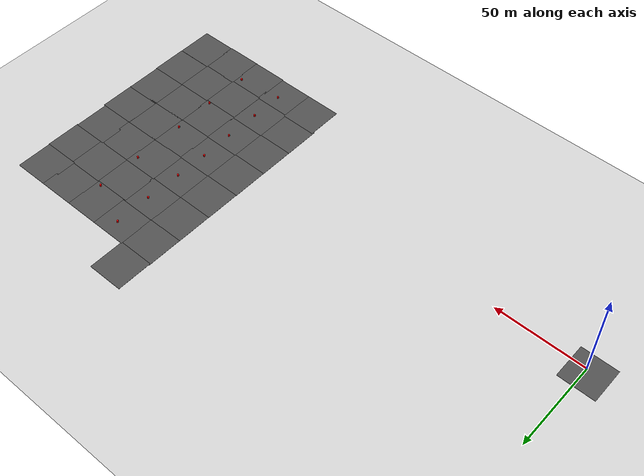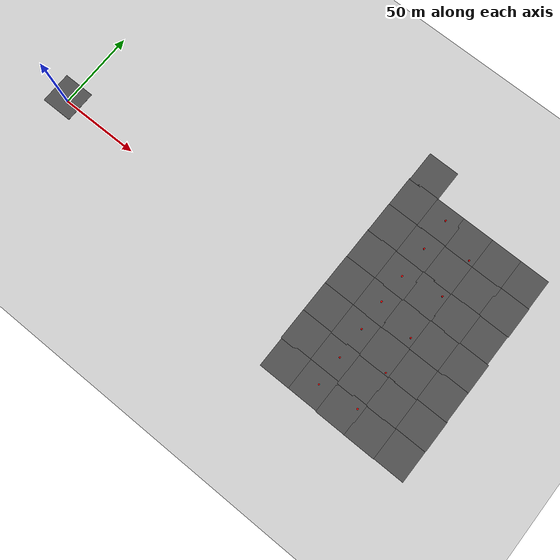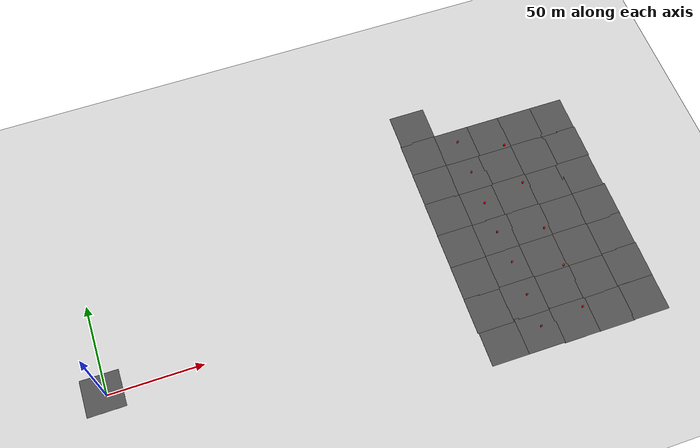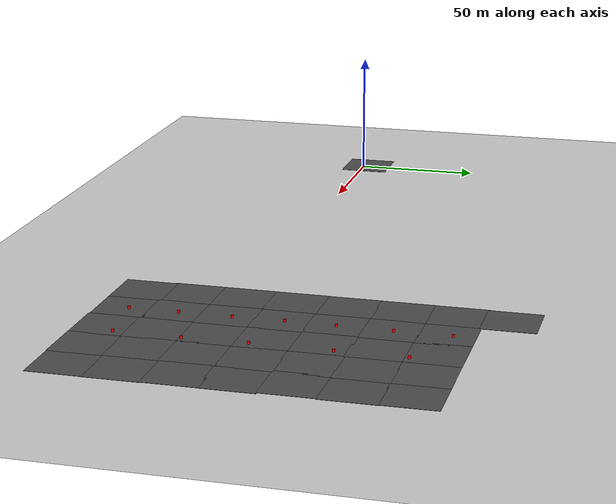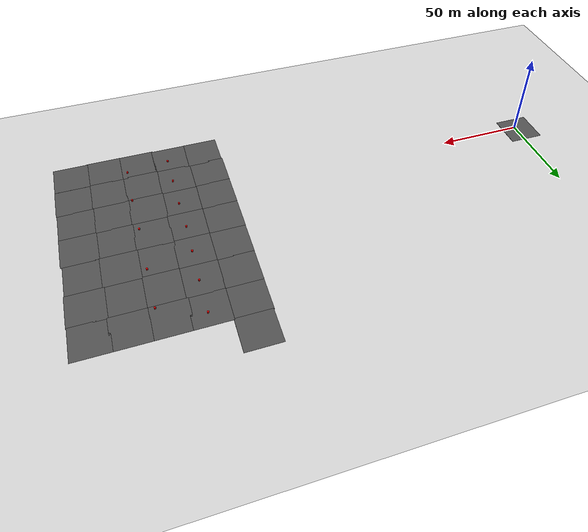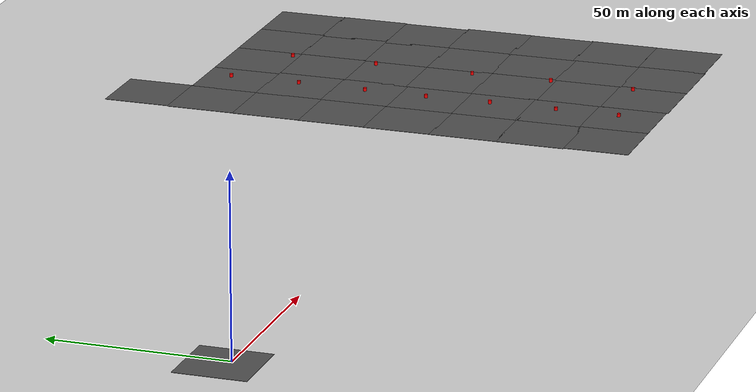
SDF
<sdf version="1.6">
 <world name="default">
  <model name="ground_plane">
   <static>1</static>
   <link name="link">
    <collision name="collision">
     <geometry><plane><normal>0 0 1</normal><size>100 100</size></plane></geometry>
     <surface>
      <contact><collide_bitmask>65535</collide_bitmask></contact>
      <friction><ode><mu>100</mu><mu2>50</mu2></ode></friction>
     </surface>
    </collision>
    <visual name="visual">
     <cast_shadows>0</cast_shadows>
     <geometry><plane><normal>0 0 1</normal><size>100 100</size></plane></geometry>
     <material>
      <script><uri>file://media/materials/scripts/gazebo.material</uri><name>Gazebo/Grey</name></script>
     </material>
    </visual>
   </link>
  </model>
  <model name="asphalt_plane">
   <static>1</static>
   <link name="link">
    <collision name="collision"><geometry><box><size>20 20 0.1</size></box></geometry></collision>
    <visual name="visual">
     <cast_shadows>0</cast_shadows>
     <geometry><box><size>20 20 0.1</size></box></geometry>
     <material>
      <script>
       <uri>model://asphalt_plane/materials/scripts</uri>
       <uri>model://asphalt_plane/materials/textures</uri>
       <name>vrc/asphalt</name>
      </script>
     </material>
    </visual>
   </link>
   <pose>-1.68563 1.69754 0 0 -0 0</pose>
  </model>
  <model name="asphalt_plane_71">
   <static>1</static>
   <link name="link">
    <collision name="collision"><geometry><box><size>20 20 0.1</size></box></geometry></collision>
    <visual name="visual">
     <cast_shadows>0</cast_shadows>
     <geometry><box><size>20 20 0.1</size></box></geometry>
     <material>
      <script>
       <uri>model://asphalt_plane/materials/scripts</uri>
       <uri>model://asphalt_plane/materials/textures</uri>
       <name>vrc/asphalt</name>
      </script>
     </material>
    </visual>
   </link>
   <pose>196.033 59.0461 0 0 -0 0</pose>
  </model>
  <model name="asphalt_plane_72">
   <static>1</static>
   <link name="link">
    <collision name="collision"><geometry><box><size>20 20 0.1</size></box></geometry></collision>
    <visual name="visual">
     <cast_shadows>0</cast_shadows>
     <geometry><box><size>20 20 0.1</size></box></geometry>
     <material>
      <script>
       <uri>model://asphalt_plane/materials/scripts</uri>
       <uri>model://asphalt_plane/materials/textures</uri>
       <name>vrc/asphalt</name>
      </script>
     </material>
    </visual>
   </link>
   <pose>195.926 39.5453 0 0 -0 0</pose>
  </model>
  <model name="asphalt_plane_73">
   <static>1</static>
   <link name="link">
    <collision name="collision"><geometry><box><size>20 20 0.1</size></box></geometry></collision>
    <visual name="visual">
     <cast_shadows>0</cast_shadows>
     <geometry><box><size>20 20 0.1</size></box></geometry>
     <material>
      <script>
       <uri>model://asphalt_plane/materials/scripts</uri>
       <uri>model://asphalt_plane/materials/textures</uri>
       <name>vrc/asphalt</name>
      </script>
     </material>
    </visual>
   </link>
   <pose>195.795 19.5893 0 0 -0 0</pose>
  </model>
  <model name="asphalt_plane_74">
   <static>1</static>
   <link name="link">
    <collision name="collision"><geometry><box><size>20 20 0.1</size></box></geometry></collision>
    <visual name="visual">
     <cast_shadows>0</cast_shadows>
     <geometry><box><size>20 20 0.1</size></box></geometry>
     <material>
      <script>
       <uri>model://asphalt_plane/materials/scripts</uri>
       <uri>model://asphalt_plane/materials/textures</uri>
       <name>vrc/asphalt</name>
      </script>
     </material>
    </visual>
   </link>
   <pose>195.721 0.037241 0 0 -0 0</pose>
  </model>
  <model name="asphalt_plane_75">
   <static>1</static>
   <link name="link">
    <collision name="collision"><geometry><box><size>20 20 0.1</size></box></geometry></collision>
    <visual name="visual">
     <cast_shadows>0</cast_shadows>
     <geometry><box><size>20 20 0.1</size></box></geometry>
     <material>
      <script>
       <uri>model://asphalt_plane/materials/scripts</uri>
       <uri>model://asphalt_plane/materials/textures</uri>
       <name>vrc/asphalt</name>
      </script>
     </material>
    </visual>
   </link>
   <pose>195.68 -19.5532 0 0 -0 0</pose>
  </model>
  <model name="asphalt_plane_76">
   <static>1</static>
   <link name="link">
    <collision name="collision"><geometry><box><size>20 20 0.1</size></box></geometry></collision>
    <visual name="visual">
     <cast_shadows>0</cast_shadows>
     <geometry><box><size>20 20 0.1</size></box></geometry>
     <material>
      <script>
       <uri>model://asphalt_plane/materials/scripts</uri>
       <uri>model://asphalt_plane/materials/textures</uri>
       <name>vrc/asphalt</name>
      </script>
     </material>
    </visual>
   </link>
   <pose>196.187 -38.3062 0 0 -0 0</pose>
  </model>
  <model name="asphalt_plane_77">
   <static>1</static>
   <link name="link">
    <collision name="collision"><geometry><box><size>20 20 0.1</size></box></geometry></collision>
    <visual name="visual">
     <cast_shadows>0</cast_shadows>
     <geometry><box><size>20 20 0.1</size></box></geometry>
     <material>
      <script>
       <uri>model://asphalt_plane/materials/scripts</uri>
       <uri>model://asphalt_plane/materials/textures</uri>
       <name>vrc/asphalt</name>
      </script>
     </material>
    </visual>
   </link>
   <pose>196.13 78.9336 0 0 -0 0</pose>
  </model>
  <model name="asphalt_plane_97">
   <static>1</static>
   <link name="link">
    <collision name="collision"><geometry><box><size>20 20 0.1</size></box></geometry></collision>
    <visual name="visual">
     <cast_shadows>0</cast_shadows>
     <geometry><box><size>20 20 0.1</size></box></geometry>
     <material>
      <script>
       <uri>model://asphalt_plane/materials/scripts</uri>
       <uri>model://asphalt_plane/materials/textures</uri>
       <name>vrc/asphalt</name>
      </script>
     </material>
    </visual>
   </link>
   <pose>215.963 78.8154 0 0 -0 0</pose>
  </model>
  <model name="asphalt_plane_98">
   <static>1</static>
   <link name="link">
    <collision name="collision"><geometry><box><size>20 20 0.1</size></box></geometry></collision>
    <visual name="visual">
     <cast_shadows>0</cast_shadows>
     <geometry><box><size>20 20 0.1</size></box></geometry>
     <material>
      <script>
       <uri>model://asphalt_plane/materials/scripts</uri>
       <uri>model://asphalt_plane/materials/textures</uri>
       <name>vrc/asphalt</name>
      </script>
     </material>
    </visual>
   </link>
   <pose>215.811 59.1695 0 0 -0 0</pose>
  </model>
  <model name="asphalt_plane_99">
   <static>1</static>
   <link name="link">
    <collision name="collision"><geometry><box><size>20 20 0.1</size></box></geometry></collision>
    <visual name="visual">
     <cast_shadows>0</cast_shadows>
     <geometry><box><size>20 20 0.1</size></box></geometry>
     <material>
      <script>
       <uri>model://asphalt_plane/materials/scripts</uri>
       <uri>model://asphalt_plane/materials/textures</uri>
       <name>vrc/asphalt</name>
      </script>
     </material>
    </visual>
   </link>
   <pose>215.884 39.315 0 0 -0 0</pose>
  </model>
  <model name="asphalt_plane_100">
   <static>1</static>
   <link name="link">
    <collision name="collision"><geometry><box><size>20 20 0.1</size></box></geometry></collision>
    <visual name="visual">
     <cast_shadows>0</cast_shadows>
     <geometry><box><size>20 20 0.1</size></box></geometry>
     <material>
      <script>
       <uri>model://asphalt_plane/materials/scripts</uri>
       <uri>model://asphalt_plane/materials/textures</uri>
       <name>vrc/asphalt</name>
      </script>
     </material>
    </visual>
   </link>
   <pose>215.718 19.7888 0 0 -0 0</pose>
  </model>
  <model name="asphalt_plane_101">
   <static>1</static>
   <link name="link">
    <collision name="collision"><geometry><box><size>20 20 0.1</size></box></geometry></collision>
    <visual name="visual">
     <cast_shadows>0</cast_shadows>
     <geometry><box><size>20 20 0.1</size></box></geometry>
     <material>
      <script>
       <uri>model://asphalt_plane/materials/scripts</uri>
       <uri>model://asphalt_plane/materials/textures</uri>
       <name>vrc/asphalt</name>
      </script>
     </material>
    </visual>
   </link>
   <pose>215.592 0.032219 0 0 -0 0</pose>
  </model>
  <model name="asphalt_plane_102">
   <static>1</static>
   <link name="link">
    <collision name="collision"><geometry><box><size>20 20 0.1</size></box></geometry></collision>
    <visual name="visual">
     <cast_shadows>0</cast_shadows>
     <geometry><box><size>20 20 0.1</size></box></geometry>
     <material>
      <script>
       <uri>model://asphalt_plane/materials/scripts</uri>
       <uri>model://asphalt_plane/materials/textures</uri>
       <name>vrc/asphalt</name>
      </script>
     </material>
    </visual>
   </link>
   <pose>215.391 -19.1645 0 0 -0 0</pose>
  </model>
  <model name="asphalt_plane_103">
   <static>1</static>
   <link name="link">
    <collision name="collision"><geometry><box><size>20 20 0.1</size></box></geometry></collision>
    <visual name="visual">
     <cast_shadows>0</cast_shadows>
     <geometry><box><size>20 20 0.1</size></box></geometry>
     <material>
      <script>
       <uri>model://asphalt_plane/materials/scripts</uri>
       <uri>model://asphalt_plane/materials/textures</uri>
       <name>vrc/asphalt</name>
      </script>
     </material>
    </visual>
   </link>
   <pose>216.035 -38.3002 0 0 -0 0</pose>
  </model>
  <model name="asphalt_plane_104">
   <static>1</static>
   <link name="link">
    <collision name="collision"><geometry><box><size>20 20 0.1</size></box></geometry></collision>
    <visual name="visual">
     <cast_shadows>0</cast_shadows>
     <geometry><box><size>20 20 0.1</size></box></geometry>
     <material>
      <script>
       <uri>model://asphalt_plane/materials/scripts</uri>
       <uri>model://asphalt_plane/materials/textures</uri>
       <name>vrc/asphalt</name>
      </script>
     </material>
    </visual>
   </link>
   <pose>234.771 78.8234 0 0 -0 0</pose>
  </model>
  <model name="asphalt_plane_105">
   <static>1</static>
   <link name="link">
    <collision name="collision"><geometry><box><size>20 20 0.1</size></box></geometry></collision>
    <visual name="visual">
     <cast_shadows>0</cast_shadows>
     <geometry><box><size>20 20 0.1</size></box></geometry>
     <material>
      <script>
       <uri>model://asphalt_plane/materials/scripts</uri>
       <uri>model://asphalt_plane/materials/textures</uri>
       <name>vrc/asphalt</name>
      </script>
     </material>
    </visual>
   </link>
   <pose>234.889 58.8538 0 0 -0 0</pose>
  </model>
  <model name="asphalt_plane_106">
   <static>1</static>
   <link name="link">
    <collision name="collision"><geometry><box><size>20 20 0.1</size></box></geometry></collision>
    <visual name="visual">
     <cast_shadows>0</cast_shadows>
     <geometry><box><size>20 20 0.1</size></box></geometry>
     <material>
      <script>
       <uri>model://asphalt_plane/materials/scripts</uri>
       <uri>model://asphalt_plane/materials/textures</uri>
       <name>vrc/asphalt</name>
      </script>
     </material>
    </visual>
   </link>
   <pose>235.063 39.6151 0 0 -0 0</pose>
  </model>
  <model name="asphalt_plane_107">
   <static>1</static>
   <link name="link">
    <collision name="collision"><geometry><box><size>20 20 0.1</size></box></geometry></collision>
    <visual name="visual">
     <cast_shadows>0</cast_shadows>
     <geometry><box><size>20 20 0.1</size></box></geometry>
     <material>
      <script>
       <uri>model://asphalt_plane/materials/scripts</uri>
       <uri>model://asphalt_plane/materials/textures</uri>
       <name>vrc/asphalt</name>
      </script>
     </material>
    </visual>
   </link>
   <pose>235.154 19.9282 0 0 -0 0</pose>
  </model>
  <model name="asphalt_plane_108">
   <static>1</static>
   <link name="link">
    <collision name="collision"><geometry><box><size>20 20 0.1</size></box></geometry></collision>
    <visual name="visual">
     <cast_shadows>0</cast_shadows>
     <geometry><box><size>20 20 0.1</size></box></geometry>
     <material>
      <script>
       <uri>model://asphalt_plane/materials/scripts</uri>
       <uri>model://asphalt_plane/materials/textures</uri>
       <name>vrc/asphalt</name>
      </script>
     </material>
    </visual>
   </link>
   <pose>235.037 0.192656 0 0 -0 0</pose>
  </model>
  <model name="asphalt_plane_109">
   <static>1</static>
   <link name="link">
    <collision name="collision"><geometry><box><size>20 20 0.1</size></box></geometry></collision>
    <visual name="visual">
     <cast_shadows>0</cast_shadows>
     <geometry><box><size>20 20 0.1</size></box></geometry>
     <material>
      <script>
       <uri>model://asphalt_plane/materials/scripts</uri>
       <uri>model://asphalt_plane/materials/textures</uri>
       <name>vrc/asphalt</name>
      </script>
     </material>
    </visual>
   </link>
   <pose>235.185 -19.6901 0 0 -0 0</pose>
  </model>
  <model name="asphalt_plane_110">
   <static>1</static>
   <link name="link">
    <collision name="collision"><geometry><box><size>20 20 0.1</size></box></geometry></collision>
    <visual name="visual">
     <cast_shadows>0</cast_shadows>
     <geometry><box><size>20 20 0.1</size></box></geometry>
     <material>
      <script>
       <uri>model://asphalt_plane/materials/scripts</uri>
       <uri>model://asphalt_plane/materials/textures</uri>
       <name>vrc/asphalt</name>
      </script>
     </material>
    </visual>
   </link>
   <pose>235.33 -38.7188 0 0 -0 0</pose>
  </model>
  <model name="asphalt_plane_111">
   <static>1</static>
   <link name="link">
    <collision name="collision"><geometry><box><size>20 20 0.1</size></box></geometry></collision>
    <visual name="visual">
     <cast_shadows>0</cast_shadows>
     <geometry><box><size>20 20 0.1</size></box></geometry>
     <material>
      <script>
       <uri>model://asphalt_plane/materials/scripts</uri>
       <uri>model://asphalt_plane/materials/textures</uri>
       <name>vrc/asphalt</name>
      </script>
     </material>
    </visual>
   </link>
   <pose>254.52 78.8409 0 0 -0 0</pose>
  </model>
  <model name="asphalt_plane_112">
   <static>1</static>
   <link name="link">
    <collision name="collision"><geometry><box><size>20 20 0.1</size></box></geometry></collision>
    <visual name="visual">
     <cast_shadows>0</cast_shadows>
     <geometry><box><size>20 20 0.1</size></box></geometry>
     <material>
      <script>
       <uri>model://asphalt_plane/materials/scripts</uri>
       <uri>model://asphalt_plane/materials/textures</uri>
       <name>vrc/asphalt</name>
      </script>
     </material>
    </visual>
   </link>
   <pose>254.735 59.2367 0 0 -0 0</pose>
  </model>
  <model name="asphalt_plane_113">
   <static>1</static>
   <link name="link">
    <collision name="collision"><geometry><box><size>20 20 0.1</size></box></geometry></collision>
    <visual name="visual">
     <cast_shadows>0</cast_shadows>
     <geometry><box><size>20 20 0.1</size></box></geometry>
     <material>
      <script>
       <uri>model://asphalt_plane/materials/scripts</uri>
       <uri>model://asphalt_plane/materials/textures</uri>
       <name>vrc/asphalt</name>
      </script>
     </material>
    </visual>
   </link>
   <pose>254.61 39.5388 0 0 -0 0</pose>
  </model>
  <model name="asphalt_plane_114">
   <static>1</static>
   <link name="link">
    <collision name="collision"><geometry><box><size>20 20 0.1</size></box></geometry></collision>
    <visual name="visual">
     <cast_shadows>0</cast_shadows>
     <geometry><box><size>20 20 0.1</size></box></geometry>
     <material>
      <script>
       <uri>model://asphalt_plane/materials/scripts</uri>
       <uri>model://asphalt_plane/materials/textures</uri>
       <name>vrc/asphalt</name>
      </script>
     </material>
    </visual>
   </link>
   <pose>254.564 20.0273 0 0 -0 0</pose>
  </model>
  <model name="asphalt_plane_115">
   <static>1</static>
   <link name="link">
    <collision name="collision"><geometry><box><size>20 20 0.1</size></box></geometry></collision>
    <visual name="visual">
     <cast_shadows>0</cast_shadows>
     <geometry><box><size>20 20 0.1</size></box></geometry>
     <material>
      <script>
       <uri>model://asphalt_plane/materials/scripts</uri>
       <uri>model://asphalt_plane/materials/textures</uri>
       <name>vrc/asphalt</name>
      </script>
     </material>
    </visual>
   </link>
   <pose>254.423 0.477799 0 0 -0 0</pose>
  </model>
  <model name="asphalt_plane_116">
   <static>1</static>
   <link name="link">
    <collision name="collision"><geometry><box><size>20 20 0.1</size></box></geometry></collision>
    <visual name="visual">
     <cast_shadows>0</cast_shadows>
     <geometry><box><size>20 20 0.1</size></box></geometry>
     <material>
      <script>
       <uri>model://asphalt_plane/materials/scripts</uri>
       <uri>model://asphalt_plane/materials/textures</uri>
       <name>vrc/asphalt</name>
      </script>
     </material>
    </visual>
   </link>
   <pose>254.621 -19.1271 0 0 -0 0</pose>
  </model>
  <model name="asphalt_plane_117">
   <static>1</static>
   <link name="link">
    <collision name="collision"><geometry><box><size>20 20 0.1</size></box></geometry></collision>
    <visual name="visual">
     <cast_shadows>0</cast_shadows>
     <geometry><box><size>20 20 0.1</size></box></geometry>
     <material>
      <script>
       <uri>model://asphalt_plane/materials/scripts</uri>
       <uri>model://asphalt_plane/materials/textures</uri>
       <name>vrc/asphalt</name>
      </script>
     </material>
    </visual>
   </link>
   <pose>254.804 -38.7956 0 0 -0 0</pose>
  </model>
  <model name="asphalt_plane_118">
   <static>1</static>
   <link name="link">
    <collision name="collision"><geometry><box><size>20 20 0.1</size></box></geometry></collision>
    <visual name="visual">
     <cast_shadows>0</cast_shadows>
     <geometry><box><size>20 20 0.1</size></box></geometry>
     <material>
      <script>
       <uri>model://asphalt_plane/materials/scripts</uri>
       <uri>model://asphalt_plane/materials/textures</uri>
       <name>vrc/asphalt</name>
      </script>
     </material>
    </visual>
   </link>
   <pose>273.396 78.8317 0 0 -0 0</pose>
  </model>
  <model name="asphalt_plane_119">
   <static>1</static>
   <link name="link">
    <collision name="collision"><geometry><box><size>20 20 0.1</size></box></geometry></collision>
    <visual name="visual">
     <cast_shadows>0</cast_shadows>
     <geometry><box><size>20 20 0.1</size></box></geometry>
     <material>
      <script>
       <uri>model://asphalt_plane/materials/scripts</uri>
       <uri>model://asphalt_plane/materials/textures</uri>
       <name>vrc/asphalt</name>
      </script>
     </material>
    </visual>
   </link>
   <pose>273.695 59.3248 0 0 -0 0</pose>
  </model>
  <model name="asphalt_plane_120">
   <static>1</static>
   <link name="link">
    <collision name="collision"><geometry><box><size>20 20 0.1</size></box></geometry></collision>
    <visual name="visual">
     <cast_shadows>0</cast_shadows>
     <geometry><box><size>20 20 0.1</size></box></geometry>
     <material>
      <script>
       <uri>model://asphalt_plane/materials/scripts</uri>
       <uri>model://asphalt_plane/materials/textures</uri>
       <name>vrc/asphalt</name>
      </script>
     </material>
    </visual>
   </link>
   <pose>273.304 39.6841 0 0 -0 0</pose>
  </model>
  <model name="asphalt_plane_121">
   <static>1</static>
   <link name="link">
    <collision name="collision"><geometry><box><size>20 20 0.1</size></box></geometry></collision>
    <visual name="visual">
     <cast_shadows>0</cast_shadows>
     <geometry><box><size>20 20 0.1</size></box></geometry>
     <material>
      <script>
       <uri>model://asphalt_plane/materials/scripts</uri>
       <uri>model://asphalt_plane/materials/textures</uri>
       <name>vrc/asphalt</name>
      </script>
     </material>
    </visual>
   </link>
   <pose>274.172 20.0591 0 0 -0 0</pose>
  </model>
  <model name="asphalt_plane_122">
   <static>1</static>
   <link name="link">
    <collision name="collision"><geometry><box><size>20 20 0.1</size></box></geometry></collision>
    <visual name="visual">
     <cast_shadows>0</cast_shadows>
     <geometry><box><size>20 20 0.1</size></box></geometry>
     <material>
      <script>
       <uri>model://asphalt_plane/materials/scripts</uri>
       <uri>model://asphalt_plane/materials/textures</uri>
       <name>vrc/asphalt</name>
      </script>
     </material>
    </visual>
   </link>
   <pose>274.1 1.0028 0 0 -0 0</pose>
  </model>
  <model name="asphalt_plane_123">
   <static>1</static>
   <link name="link">
    <collision name="collision"><geometry><box><size>20 20 0.1</size></box></geometry></collision>
    <visual name="visual">
     <cast_shadows>0</cast_shadows>
     <geometry><box><size>20 20 0.1</size></box></geometry>
     <material>
      <script>
       <uri>model://asphalt_plane/materials/scripts</uri>
       <uri>model://asphalt_plane/materials/textures</uri>
       <name>vrc/asphalt</name>
      </script>
     </material>
    </visual>
   </link>
   <pose>274.434 -18.5635 0 0 -0 0</pose>
  </model>
  <model name="asphalt_plane_124">
   <static>1</static>
   <link name="link">
    <collision name="collision"><geometry><box><size>20 20 0.1</size></box></geometry></collision>
    <visual name="visual">
     <cast_shadows>0</cast_shadows>
     <geometry><box><size>20 20 0.1</size></box></geometry>
     <material>
      <script>
       <uri>model://asphalt_plane/materials/scripts</uri>
       <uri>model://asphalt_plane/materials/textures</uri>
       <name>vrc/asphalt</name>
      </script>
     </material>
    </visual>
   </link>
   <pose>274.33 -38.5794 0 0 -0 0</pose>
  </model>
  <model name="asphalt_plane_129">
   <static>1</static>
   <link name="link">
    <collision name="collision"><geometry><box><size>20 20 0.1</size></box></geometry></collision>
    <visual name="visual">
     <cast_shadows>0</cast_shadows>
     <geometry><box><size>20 20 0.1</size></box></geometry>
     <material>
      <script>
       <uri>model://asphalt_plane/materials/scripts</uri>
       <uri>model://asphalt_plane/materials/textures</uri>
       <name>vrc/asphalt</name>
      </script>
     </material>
    </visual>
   </link>
   <pose>196.465 98.0841 0 0 -0 0</pose>
  </model>
  <model name="station_7">
   <link name="link">
    <inertial>
     <mass>1</mass>
     <inertia><ixx>0.145833</ixx><ixy>0</ixy><ixz>0</ixz><iyy>0.145833</iyy><iyz>0</iyz><izz>0.125</izz></inertia>
    </inertial>
    <visual name="visual">
     <geometry><cylinder><radius>0.5</radius><length>1</length></cylinder></geometry>
     <material>
      <script><name>Gazebo/Grey</name><uri>file://media/materials/scripts/gazebo.material</uri></script>
      <shader type="vertex"><normal_map>__default__</normal_map></shader>
      <ambient>1 0 0 0</ambient>
      <diffuse>0 0 0 1</diffuse>
      <specular>0.91 0.01 0.01 1</specular>
      <emissive>0 0 0 1</emissive>
     </material>
    </visual>
    <collision name="collision">
     <geometry><cylinder><radius>0.5</radius><length>1</length></cylinder></geometry>
     <surface>
      <friction>
       <ode><mu>1</mu><mu2>1</mu2><fdir1>0 0 0</fdir1><slip1>0</slip1><slip2>0</slip2></ode>
       <torsional>
        <coefficient>1</coefficient>
        <patch_radius>0</patch_radius>
        <surface_radius>0</surface_radius>
        <use_patch_radius>1</use_patch_radius>
        <ode><slip>0</slip></ode>
       </torsional>
      </friction>
      <bounce><restitution_coefficient>0</restitution_coefficient><threshold>1e+06</threshold></bounce>
      <contact>
       <collide_without_contact>0</collide_without_contact>
       <collide_without_contact_bitmask>1</collide_without_contact_bitmask>
       <collide_bitmask>1</collide_bitmask>
       <ode>
        <soft_cfm>0</soft_cfm>
        <soft_erp>0.2</soft_erp>
        <kp>1e+13</kp>
        <kd>1</kd>
        <max_vel>0.01</max_vel>
        <min_depth>0</min_depth>
       </ode>
       <bullet>
        <split_impulse>1</split_impulse>
        <split_impulse_penetration_threshold>-0.01</split_impulse_penetration_threshold>
        <soft_cfm>0</soft_cfm>
        <soft_erp>0.2</soft_erp>
        <kp>1e+13</kp>
        <kd>1</kd>
       </bullet>
      </contact>
     </surface>
    </collision>
   </link>
   <static>1</static>
   <pose>241.37 70.5062 0.619557 0 -0 0</pose>
  </model>
  <model name="station_8">
   <link name="link">
    <inertial>
     <mass>1</mass>
     <inertia><ixx>0.145833</ixx><ixy>0</ixy><ixz>0</ixz><iyy>0.145833</iyy><iyz>0</iyz><izz>0.125</izz></inertia>
    </inertial>
    <visual name="visual">
     <geometry><cylinder><radius>0.5</radius><length>1</length></cylinder></geometry>
     <material>
      <script><name>Gazebo/Grey</name><uri>file://media/materials/scripts/gazebo.material</uri></script>
      <shader type="vertex"><normal_map>__default__</normal_map></shader>
      <ambient>1 0 0 0</ambient>
      <diffuse>0 0 0 1</diffuse>
      <specular>0.91 0.01 0.01 1</specular>
      <emissive>0 0 0 1</emissive>
     </material>
    </visual>
    <collision name="collision">
     <geometry><cylinder><radius>0.5</radius><length>1</length></cylinder></geometry>
     <surface>
      <friction>
       <ode><mu>1</mu><mu2>1</mu2><fdir1>0 0 0</fdir1><slip1>0</slip1><slip2>0</slip2></ode>
       <torsional>
        <coefficient>1</coefficient>
        <patch_radius>0</patch_radius>
        <surface_radius>0</surface_radius>
        <use_patch_radius>1</use_patch_radius>
        <ode><slip>0</slip></ode>
       </torsional>
      </friction>
      <bounce><restitution_coefficient>0</restitution_coefficient><threshold>1e+06</threshold></bounce>
      <contact>
       <collide_without_contact>0</collide_without_contact>
       <collide_without_contact_bitmask>1</collide_without_contact_bitmask>
       <collide_bitmask>1</collide_bitmask>
       <ode>
        <soft_cfm>0</soft_cfm>
        <soft_erp>0.2</soft_erp>
        <kp>1e+13</kp>
        <kd>1</kd>
        <max_vel>0.01</max_vel>
        <min_depth>0</min_depth>
       </ode>
       <bullet>
        <split_impulse>1</split_impulse>
        <split_impulse_penetration_threshold>-0.01</split_impulse_penetration_threshold>
        <soft_cfm>0</soft_cfm>
        <soft_erp>0.2</soft_erp>
        <kp>1e+13</kp>
        <kd>1</kd>
       </bullet>
      </contact>
     </surface>
    </collision>
   </link>
   <static>1</static>
   <pose>241.647 44.7638 0.619557 0 -0 0</pose>
  </model>
  <model name="station_9">
   <link name="link">
    <inertial>
     <mass>1</mass>
     <inertia><ixx>0.145833</ixx><ixy>0</ixy><ixz>0</ixz><iyy>0.145833</iyy><iyz>0</iyz><izz>0.125</izz></inertia>
    </inertial>
    <visual name="visual">
     <geometry><cylinder><radius>0.5</radius><length>1</length></cylinder></geometry>
     <material>
      <script><name>Gazebo/Grey</name><uri>file://media/materials/scripts/gazebo.material</uri></script>
      <shader type="vertex"><normal_map>__default__</normal_map></shader>
      <ambient>1 0 0 0</ambient>
      <diffuse>0 0 0 1</diffuse>
      <specular>0.91 0.01 0.01 1</specular>
      <emissive>0 0 0 1</emissive>
     </material>
    </visual>
    <collision name="collision">
     <geometry><cylinder><radius>0.5</radius><length>1</length></cylinder></geometry>
     <surface>
      <friction>
       <ode><mu>1</mu><mu2>1</mu2><fdir1>0 0 0</fdir1><slip1>0</slip1><slip2>0</slip2></ode>
       <torsional>
        <coefficient>1</coefficient>
        <patch_radius>0</patch_radius>
        <surface_radius>0</surface_radius>
        <use_patch_radius>1</use_patch_radius>
        <ode><slip>0</slip></ode>
       </torsional>
      </friction>
      <bounce><restitution_coefficient>0</restitution_coefficient><threshold>1e+06</threshold></bounce>
      <contact>
       <collide_without_contact>0</collide_without_contact>
       <collide_without_contact_bitmask>1</collide_without_contact_bitmask>
       <collide_bitmask>1</collide_bitmask>
       <ode>
        <soft_cfm>0</soft_cfm>
        <soft_erp>0.2</soft_erp>
        <kp>1e+13</kp>
        <kd>1</kd>
        <max_vel>0.01</max_vel>
        <min_depth>0</min_depth>
       </ode>
       <bullet>
        <split_impulse>1</split_impulse>
        <split_impulse_penetration_threshold>-0.01</split_impulse_penetration_threshold>
        <soft_cfm>0</soft_cfm>
        <soft_erp>0.2</soft_erp>
        <kp>1e+13</kp>
        <kd>1</kd>
       </bullet>
      </contact>
     </surface>
    </collision>
   </link>
   <static>1</static>
   <pose>241.685 15.1841 0.619557 0 -0 0</pose>
  </model>
  <model name="station_10">
   <link name="link">
    <inertial>
     <mass>1</mass>
     <inertia><ixx>0.145833</ixx><ixy>0</ixy><ixz>0</ixz><iyy>0.145833</iyy><iyz>0</iyz><izz>0.125</izz></inertia>
    </inertial>
    <visual name="visual">
     <geometry><cylinder><radius>0.5</radius><length>1</length></cylinder></geometry>
     <material>
      <script><name>Gazebo/Grey</name><uri>file://media/materials/scripts/gazebo.material</uri></script>
      <shader type="vertex"><normal_map>__default__</normal_map></shader>
      <ambient>1 0 0 0</ambient>
      <diffuse>0 0 0 1</diffuse>
      <specular>0.91 0.01 0.01 1</specular>
      <emissive>0 0 0 1</emissive>
     </material>
    </visual>
    <collision name="collision">
     <geometry><cylinder><radius>0.5</radius><length>1</length></cylinder></geometry>
     <surface>
      <friction>
       <ode><mu>1</mu><mu2>1</mu2><fdir1>0 0 0</fdir1><slip1>0</slip1><slip2>0</slip2></ode>
       <torsional>
        <coefficient>1</coefficient>
        <patch_radius>0</patch_radius>
        <surface_radius>0</surface_radius>
        <use_patch_radius>1</use_patch_radius>
        <ode><slip>0</slip></ode>
       </torsional>
      </friction>
      <bounce><restitution_coefficient>0</restitution_coefficient><threshold>1e+06</threshold></bounce>
      <contact>
       <collide_without_contact>0</collide_without_contact>
       <collide_without_contact_bitmask>1</collide_without_contact_bitmask>
       <collide_bitmask>1</collide_bitmask>
       <ode>
        <soft_cfm>0</soft_cfm>
        <soft_erp>0.2</soft_erp>
        <kp>1e+13</kp>
        <kd>1</kd>
        <max_vel>0.01</max_vel>
        <min_depth>0</min_depth>
       </ode>
       <bullet>
        <split_impulse>1</split_impulse>
        <split_impulse_penetration_threshold>-0.01</split_impulse_penetration_threshold>
        <soft_cfm>0</soft_cfm>
        <soft_erp>0.2</soft_erp>
        <kp>1e+13</kp>
        <kd>1</kd>
       </bullet>
      </contact>
     </surface>
    </collision>
   </link>
   <static>1</static>
   <pose>242.475 -8.50903 0.619557 0 -0 0</pose>
  </model>
  <model name="station_11">
   <link name="link">
    <inertial>
     <mass>1</mass>
     <inertia><ixx>0.145833</ixx><ixy>0</ixy><ixz>0</ixz><iyy>0.145833</iyy><iyz>0</iyz><izz>0.125</izz></inertia>
    </inertial>
    <visual name="visual">
     <geometry><cylinder><radius>0.5</radius><length>1</length></cylinder></geometry>
     <material>
      <script><name>Gazebo/Grey</name><uri>file://media/materials/scripts/gazebo.material</uri></script>
      <shader type="vertex"><normal_map>__default__</normal_map></shader>
      <ambient>1 0 0 0</ambient>
      <diffuse>0 0 0 1</diffuse>
      <specular>0.91 0.01 0.01 1</specular>
      <emissive>0 0 0 1</emissive>
     </material>
    </visual>
    <collision name="collision">
     <geometry><cylinder><radius>0.5</radius><length>1</length></cylinder></geometry>
     <surface>
      <friction>
       <ode><mu>1</mu><mu2>1</mu2><fdir1>0 0 0</fdir1><slip1>0</slip1><slip2>0</slip2></ode>
       <torsional>
        <coefficient>1</coefficient>
        <patch_radius>0</patch_radius>
        <surface_radius>0</surface_radius>
        <use_patch_radius>1</use_patch_radius>
        <ode><slip>0</slip></ode>
       </torsional>
      </friction>
      <bounce><restitution_coefficient>0</restitution_coefficient><threshold>1e+06</threshold></bounce>
      <contact>
       <collide_without_contact>0</collide_without_contact>
       <collide_without_contact_bitmask>1</collide_without_contact_bitmask>
       <collide_bitmask>1</collide_bitmask>
       <ode>
        <soft_cfm>0</soft_cfm>
        <soft_erp>0.2</soft_erp>
        <kp>1e+13</kp>
        <kd>1</kd>
        <max_vel>0.01</max_vel>
        <min_depth>0</min_depth>
       </ode>
       <bullet>
        <split_impulse>1</split_impulse>
        <split_impulse_penetration_threshold>-0.01</split_impulse_penetration_threshold>
        <soft_cfm>0</soft_cfm>
        <soft_erp>0.2</soft_erp>
        <kp>1e+13</kp>
        <kd>1</kd>
       </bullet>
      </contact>
     </surface>
    </collision>
   </link>
   <static>1</static>
   <pose>242.213 -33.4155 0.619557 0 -0 0</pose>
  </model>
  <model name="station_12">
   <link name="link">
    <inertial>
     <mass>1</mass>
     <inertia><ixx>0.145833</ixx><ixy>0</ixy><ixz>0</ixz><iyy>0.145833</iyy><iyz>0</iyz><izz>0.125</izz></inertia>
    </inertial>
    <visual name="visual">
     <geometry><cylinder><radius>0.5</radius><length>1</length></cylinder></geometry>
     <material>
      <script><name>Gazebo/Grey</name><uri>file://media/materials/scripts/gazebo.material</uri></script>
      <shader type="vertex"><normal_map>__default__</normal_map></shader>
      <ambient>1 0 0 0</ambient>
      <diffuse>0 0 0 1</diffuse>
      <specular>0.91 0.01 0.01 1</specular>
      <emissive>0 0 0 1</emissive>
     </material>
    </visual>
    <collision name="collision">
     <geometry><cylinder><radius>0.5</radius><length>1</length></cylinder></geometry>
     <surface>
      <friction>
       <ode><mu>1</mu><mu2>1</mu2><fdir1>0 0 0</fdir1><slip1>0</slip1><slip2>0</slip2></ode>
       <torsional>
        <coefficient>1</coefficient>
        <patch_radius>0</patch_radius>
        <surface_radius>0</surface_radius>
        <use_patch_radius>1</use_patch_radius>
        <ode><slip>0</slip></ode>
       </torsional>
      </friction>
      <bounce><restitution_coefficient>0</restitution_coefficient><threshold>1e+06</threshold></bounce>
      <contact>
       <collide_without_contact>0</collide_without_contact>
       <collide_without_contact_bitmask>1</collide_without_contact_bitmask>
       <collide_bitmask>1</collide_bitmask>
       <ode>
        <soft_cfm>0</soft_cfm>
        <soft_erp>0.2</soft_erp>
        <kp>1e+13</kp>
        <kd>1</kd>
        <max_vel>0.01</max_vel>
        <min_depth>0</min_depth>
       </ode>
       <bullet>
        <split_impulse>1</split_impulse>
        <split_impulse_penetration_threshold>-0.01</split_impulse_penetration_threshold>
        <soft_cfm>0</soft_cfm>
        <soft_erp>0.2</soft_erp>
        <kp>1e+13</kp>
        <kd>1</kd>
       </bullet>
      </contact>
     </surface>
    </collision>
   </link>
   <static>1</static>
   <pose>217.791 -36.2528 0.619557 0 -0 0</pose>
  </model>
  <model name="station_13">
   <link name="link">
    <inertial>
     <mass>1</mass>
     <inertia><ixx>0.145833</ixx><ixy>0</ixy><ixz>0</ixz><iyy>0.145833</iyy><iyz>0</iyz><izz>0.125</izz></inertia>
    </inertial>
    <visual name="visual">
     <geometry><cylinder><radius>0.5</radius><length>1</length></cylinder></geometry>
     <material>
      <script><name>Gazebo/Grey</name><uri>file://media/materials/scripts/gazebo.material</uri></script>
      <shader type="vertex"><normal_map>__default__</normal_map></shader>
      <ambient>1 0 0 0</ambient>
      <diffuse>0 0 0 1</diffuse>
      <specular>0.91 0.01 0.01 1</specular>
      <emissive>0 0 0 1</emissive>
     </material>
    </visual>
    <collision name="collision">
     <geometry><cylinder><radius>0.5</radius><length>1</length></cylinder></geometry>
     <surface>
      <friction>
       <ode><mu>1</mu><mu2>1</mu2><fdir1>0 0 0</fdir1><slip1>0</slip1><slip2>0</slip2></ode>
       <torsional>
        <coefficient>1</coefficient>
        <patch_radius>0</patch_radius>
        <surface_radius>0</surface_radius>
        <use_patch_radius>1</use_patch_radius>
        <ode><slip>0</slip></ode>
       </torsional>
      </friction>
      <bounce><restitution_coefficient>0</restitution_coefficient><threshold>1e+06</threshold></bounce>
      <contact>
       <collide_without_contact>0</collide_without_contact>
       <collide_without_contact_bitmask>1</collide_without_contact_bitmask>
       <collide_bitmask>1</collide_bitmask>
       <ode>
        <soft_cfm>0</soft_cfm>
        <soft_erp>0.2</soft_erp>
        <kp>1e+13</kp>
        <kd>1</kd>
        <max_vel>0.01</max_vel>
        <min_depth>0</min_depth>
       </ode>
       <bullet>
        <split_impulse>1</split_impulse>
        <split_impulse_penetration_threshold>-0.01</split_impulse_penetration_threshold>
        <soft_cfm>0</soft_cfm>
        <soft_erp>0.2</soft_erp>
        <kp>1e+13</kp>
        <kd>1</kd>
       </bullet>
      </contact>
     </surface>
    </collision>
   </link>
   <static>1</static>
   <pose>217.725 -17.6626 0.619557 0 -0 0</pose>
  </model>
  <model name="station_14">
   <link name="link">
    <inertial>
     <mass>1</mass>
     <inertia><ixx>0.145833</ixx><ixy>0</ixy><ixz>0</ixz><iyy>0.145833</iyy><iyz>0</iyz><izz>0.125</izz></inertia>
    </inertial>
    <visual name="visual">
     <geometry><cylinder><radius>0.5</radius><length>1</length></cylinder></geometry>
     <material>
      <script><name>Gazebo/Grey</name><uri>file://media/materials/scripts/gazebo.material</uri></script>
      <shader type="vertex"><normal_map>__default__</normal_map></shader>
      <ambient>1 0 0 0</ambient>
      <diffuse>0 0 0 1</diffuse>
      <specular>0.91 0.01 0.01 1</specular>
      <emissive>0 0 0 1</emissive>
     </material>
    </visual>
    <collision name="collision">
     <geometry><cylinder><radius>0.5</radius><length>1</length></cylinder></geometry>
     <surface>
      <friction>
       <ode><mu>1</mu><mu2>1</mu2><fdir1>0 0 0</fdir1><slip1>0</slip1><slip2>0</slip2></ode>
       <torsional>
        <coefficient>1</coefficient>
        <patch_radius>0</patch_radius>
        <surface_radius>0</surface_radius>
        <use_patch_radius>1</use_patch_radius>
        <ode><slip>0</slip></ode>
       </torsional>
      </friction>
      <bounce><restitution_coefficient>0</restitution_coefficient><threshold>1e+06</threshold></bounce>
      <contact>
       <collide_without_contact>0</collide_without_contact>
       <collide_without_contact_bitmask>1</collide_without_contact_bitmask>
       <collide_bitmask>1</collide_bitmask>
       <ode>
        <soft_cfm>0</soft_cfm>
        <soft_erp>0.2</soft_erp>
        <kp>1e+13</kp>
        <kd>1</kd>
        <max_vel>0.01</max_vel>
        <min_depth>0</min_depth>
       </ode>
       <bullet>
        <split_impulse>1</split_impulse>
        <split_impulse_penetration_threshold>-0.01</split_impulse_penetration_threshold>
        <soft_cfm>0</soft_cfm>
        <soft_erp>0.2</soft_erp>
        <kp>1e+13</kp>
        <kd>1</kd>
       </bullet>
      </contact>
     </surface>
    </collision>
   </link>
   <static>1</static>
   <pose>217.603 2.12075 0.619557 0 -0 0</pose>
  </model>
  <model name="station_15">
   <link name="link">
    <inertial>
     <mass>1</mass>
     <inertia><ixx>0.145833</ixx><ixy>0</ixy><ixz>0</ixz><iyy>0.145833</iyy><iyz>0</iyz><izz>0.125</izz></inertia>
    </inertial>
    <visual name="visual">
     <geometry><cylinder><radius>0.5</radius><length>1</length></cylinder></geometry>
     <material>
      <script><name>Gazebo/Grey</name><uri>file://media/materials/scripts/gazebo.material</uri></script>
      <shader type="vertex"><normal_map>__default__</normal_map></shader>
      <ambient>1 0 0 0</ambient>
      <diffuse>0 0 0 1</diffuse>
      <specular>0.91 0.01 0.01 1</specular>
      <emissive>0 0 0 1</emissive>
     </material>
    </visual>
    <collision name="collision">
     <geometry><cylinder><radius>0.5</radius><length>1</length></cylinder></geometry>
     <surface>
      <friction>
       <ode><mu>1</mu><mu2>1</mu2><fdir1>0 0 0</fdir1><slip1>0</slip1><slip2>0</slip2></ode>
       <torsional>
        <coefficient>1</coefficient>
        <patch_radius>0</patch_radius>
        <surface_radius>0</surface_radius>
        <use_patch_radius>1</use_patch_radius>
        <ode><slip>0</slip></ode>
       </torsional>
      </friction>
      <bounce><restitution_coefficient>0</restitution_coefficient><threshold>1e+06</threshold></bounce>
      <contact>
       <collide_without_contact>0</collide_without_contact>
       <collide_without_contact_bitmask>1</collide_without_contact_bitmask>
       <collide_bitmask>1</collide_bitmask>
       <ode>
        <soft_cfm>0</soft_cfm>
        <soft_erp>0.2</soft_erp>
        <kp>1e+13</kp>
        <kd>1</kd>
        <max_vel>0.01</max_vel>
        <min_depth>0</min_depth>
       </ode>
       <bullet>
        <split_impulse>1</split_impulse>
        <split_impulse_penetration_threshold>-0.01</split_impulse_penetration_threshold>
        <soft_cfm>0</soft_cfm>
        <soft_erp>0.2</soft_erp>
        <kp>1e+13</kp>
        <kd>1</kd>
       </bullet>
      </contact>
     </surface>
    </collision>
   </link>
   <static>1</static>
   <pose>216.931 21.1295 0.619557 0 -0 0</pose>
  </model>
  <model name="station_16">
   <link name="link">
    <inertial>
     <mass>1</mass>
     <inertia><ixx>0.145833</ixx><ixy>0</ixy><ixz>0</ixz><iyy>0.145833</iyy><iyz>0</iyz><izz>0.125</izz></inertia>
    </inertial>
    <visual name="visual">
     <geometry><cylinder><radius>0.5</radius><length>1</length></cylinder></geometry>
     <material>
      <script><name>Gazebo/Grey</name><uri>file://media/materials/scripts/gazebo.material</uri></script>
      <shader type="vertex"><normal_map>__default__</normal_map></shader>
      <ambient>1 0 0 0</ambient>
      <diffuse>0 0 0 1</diffuse>
      <specular>0.91 0.01 0.01 1</specular>
      <emissive>0 0 0 1</emissive>
     </material>
    </visual>
    <collision name="collision">
     <geometry><cylinder><radius>0.5</radius><length>1</length></cylinder></geometry>
     <surface>
      <friction>
       <ode><mu>1</mu><mu2>1</mu2><fdir1>0 0 0</fdir1><slip1>0</slip1><slip2>0</slip2></ode>
       <torsional>
        <coefficient>1</coefficient>
        <patch_radius>0</patch_radius>
        <surface_radius>0</surface_radius>
        <use_patch_radius>1</use_patch_radius>
        <ode><slip>0</slip></ode>
       </torsional>
      </friction>
      <bounce><restitution_coefficient>0</restitution_coefficient><threshold>1e+06</threshold></bounce>
      <contact>
       <collide_without_contact>0</collide_without_contact>
       <collide_without_contact_bitmask>1</collide_without_contact_bitmask>
       <collide_bitmask>1</collide_bitmask>
       <ode>
        <soft_cfm>0</soft_cfm>
        <soft_erp>0.2</soft_erp>
        <kp>1e+13</kp>
        <kd>1</kd>
        <max_vel>0.01</max_vel>
        <min_depth>0</min_depth>
       </ode>
       <bullet>
        <split_impulse>1</split_impulse>
        <split_impulse_penetration_threshold>-0.01</split_impulse_penetration_threshold>
        <soft_cfm>0</soft_cfm>
        <soft_erp>0.2</soft_erp>
        <kp>1e+13</kp>
        <kd>1</kd>
       </bullet>
      </contact>
     </surface>
    </collision>
   </link>
   <static>1</static>
   <pose>217.242 39.7573 0.619557 0 -0 0</pose>
  </model>
  <model name="station_17">
   <link name="link">
    <inertial>
     <mass>1</mass>
     <inertia><ixx>0.145833</ixx><ixy>0</ixy><ixz>0</ixz><iyy>0.145833</iyy><iyz>0</iyz><izz>0.125</izz></inertia>
    </inertial>
    <visual name="visual">
     <geometry><cylinder><radius>0.5</radius><length>1</length></cylinder></geometry>
     <material>
      <script><name>Gazebo/Grey</name><uri>file://media/materials/scripts/gazebo.material</uri></script>
      <shader type="vertex"><normal_map>__default__</normal_map></shader>
      <ambient>1 0 0 0</ambient>
      <diffuse>0 0 0 1</diffuse>
      <specular>0.91 0.01 0.01 1</specular>
      <emissive>0 0 0 1</emissive>
     </material>
    </visual>
    <collision name="collision">
     <geometry><cylinder><radius>0.5</radius><length>1</length></cylinder></geometry>
     <surface>
      <friction>
       <ode><mu>1</mu><mu2>1</mu2><fdir1>0 0 0</fdir1><slip1>0</slip1><slip2>0</slip2></ode>
       <torsional>
        <coefficient>1</coefficient>
        <patch_radius>0</patch_radius>
        <surface_radius>0</surface_radius>
        <use_patch_radius>1</use_patch_radius>
        <ode><slip>0</slip></ode>
       </torsional>
      </friction>
      <bounce><restitution_coefficient>0</restitution_coefficient><threshold>1e+06</threshold></bounce>
      <contact>
       <collide_without_contact>0</collide_without_contact>
       <collide_without_contact_bitmask>1</collide_without_contact_bitmask>
       <collide_bitmask>1</collide_bitmask>
       <ode>
        <soft_cfm>0</soft_cfm>
        <soft_erp>0.2</soft_erp>
        <kp>1e+13</kp>
        <kd>1</kd>
        <max_vel>0.01</max_vel>
        <min_depth>0</min_depth>
       </ode>
       <bullet>
        <split_impulse>1</split_impulse>
        <split_impulse_penetration_threshold>-0.01</split_impulse_penetration_threshold>
        <soft_cfm>0</soft_cfm>
        <soft_erp>0.2</soft_erp>
        <kp>1e+13</kp>
        <kd>1</kd>
       </bullet>
      </contact>
     </surface>
    </collision>
   </link>
   <static>1</static>
   <pose>217.504 60.1559 0.619557 0 -0 0</pose>
  </model>
  <model name="station_18">
   <link name="link">
    <inertial>
     <mass>1</mass>
     <inertia><ixx>0.145833</ixx><ixy>0</ixy><ixz>0</ixz><iyy>0.145833</iyy><iyz>0</iyz><izz>0.125</izz></inertia>
    </inertial>
    <visual name="visual">
     <geometry><cylinder><radius>0.5</radius><length>1</length></cylinder></geometry>
     <material>
      <script><name>Gazebo/Grey</name><uri>file://media/materials/scripts/gazebo.material</uri></script>
      <shader type="vertex"><normal_map>__default__</normal_map></shader>
      <ambient>1 0 0 0</ambient>
      <diffuse>0 0 0 1</diffuse>
      <specular>0.91 0.01 0.01 1</specular>
      <emissive>0 0 0 1</emissive>
     </material>
    </visual>
    <collision name="collision">
     <geometry><cylinder><radius>0.5</radius><length>1</length></cylinder></geometry>
     <surface>
      <friction>
       <ode><mu>1</mu><mu2>1</mu2><fdir1>0 0 0</fdir1><slip1>0</slip1><slip2>0</slip2></ode>
       <torsional>
        <coefficient>1</coefficient>
        <patch_radius>0</patch_radius>
        <surface_radius>0</surface_radius>
        <use_patch_radius>1</use_patch_radius>
        <ode><slip>0</slip></ode>
       </torsional>
      </friction>
      <bounce><restitution_coefficient>0</restitution_coefficient><threshold>1e+06</threshold></bounce>
      <contact>
       <collide_without_contact>0</collide_without_contact>
       <collide_without_contact_bitmask>1</collide_without_contact_bitmask>
       <collide_bitmask>1</collide_bitmask>
       <ode>
        <soft_cfm>0</soft_cfm>
        <soft_erp>0.2</soft_erp>
        <kp>1e+13</kp>
        <kd>1</kd>
        <max_vel>0.01</max_vel>
        <min_depth>0</min_depth>
       </ode>
       <bullet>
        <split_impulse>1</split_impulse>
        <split_impulse_penetration_threshold>-0.01</split_impulse_penetration_threshold>
        <soft_cfm>0</soft_cfm>
        <soft_erp>0.2</soft_erp>
        <kp>1e+13</kp>
        <kd>1</kd>
       </bullet>
      </contact>
     </surface>
    </collision>
   </link>
   <static>1</static>
   <pose>217.316 80.9034 0.619557 0 -0 0</pose>
  </model>
 </world>
</sdf>
